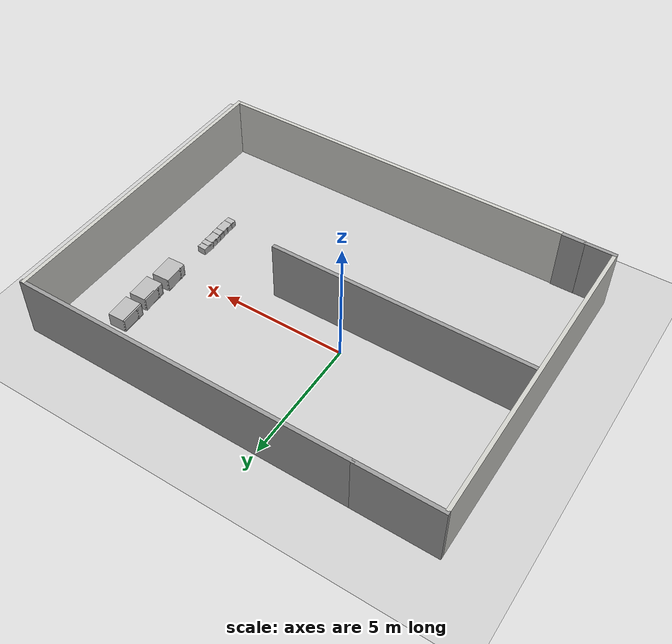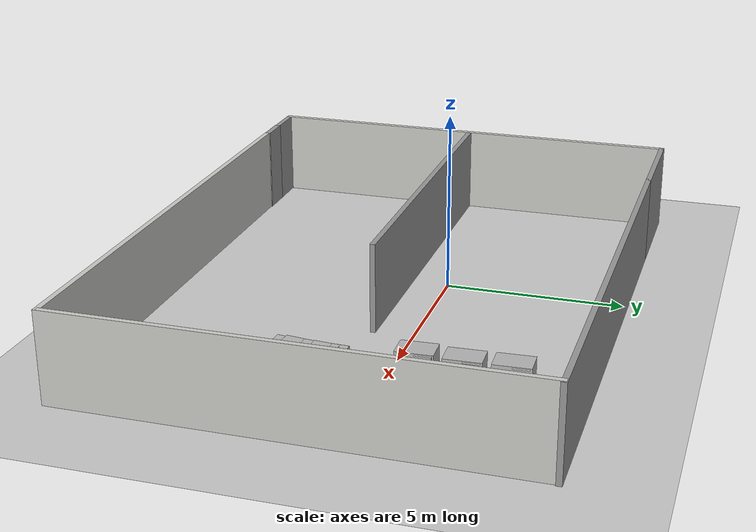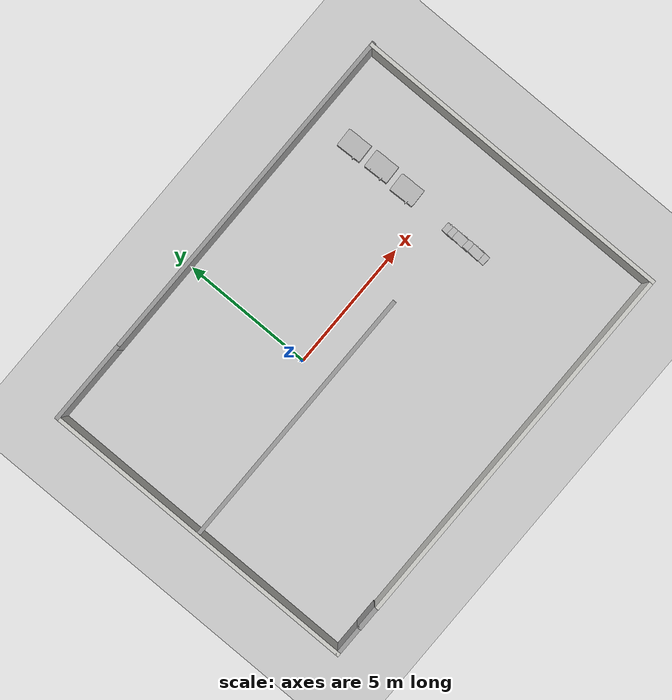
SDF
<sdf version="1.7">
 <world name="default">
  <light name="sun" type="directional">
   <pose>0 0 10 0 -0 0</pose>
   <diffuse>0.8 0.8 0.8 1</diffuse>
   <specular>0.2 0.2 0.2 1</specular>
   <attenuation>
    <range>1000</range>
    <constant>0.9</constant>
    <linear>0.01</linear>
    <quadratic>0.001</quadratic>
   </attenuation>
   <direction>-0.5 0.1 -0.9</direction>
   <spot><inner_angle>0</inner_angle><outer_angle>0</outer_angle><falloff>0</falloff></spot>
  </light>
  <model name="ground_plane">
   <static>1</static>
   <link name="link">
    <collision name="collision">
     <geometry><plane><normal>0 0 1</normal><size>100 100</size></plane></geometry>
     <surface><friction><ode><mu>100</mu><mu2>50</mu2></ode></friction></surface>
    </collision>
    <visual name="visual">
     <cast_shadows>0</cast_shadows>
     <geometry><plane><normal>0 0 1</normal><size>100 100</size></plane></geometry>
     <material>
      <script><uri>file://media/materials/scripts/gazebo.material</uri><name>Gazebo/Grey</name></script>
     </material>
    </visual>
   </link>
  </model>
  <gravity>0 0 -9.8</gravity>
  <magnetic_field>6e-06 2.3e-05 -4.2e-05</magnetic_field>
  <atmosphere type="adiabatic"/>
  <physics type="ode">
   <max_step_size>0.001</max_step_size>
   <real_time_factor>1</real_time_factor>
   <real_time_update_rate>1000</real_time_update_rate>
  </physics>
  <scene><ambient>0.4 0.4 0.4 1</ambient><background>0.7 0.7 0.7 1</background><shadows>1</shadows></scene>
  <audio><device>default</device></audio>
  <spherical_coordinates>
   <surface_model>EARTH_WGS84</surface_model>
   <latitude_deg>0</latitude_deg>
   <longitude_deg>0</longitude_deg>
   <elevation>0</elevation>
   <heading_deg>0</heading_deg>
  </spherical_coordinates>
  <model name="mobile_clone_0">
   <static>1</static>
   <pose>6.6805 -2.39981 0.906568 1.58267 0.03123 1.5096</pose>
   <link name="mobile_link">
    <visual name="visual">
     <geometry><mesh><uri>model://mobile/meshes/result.dae</uri><scale>1 1 1</scale></mesh></geometry>
    </visual>
    <collision name="collision">
     <geometry><mesh><uri>model://mobile/meshes/result.dae</uri><scale>1 1 1</scale></mesh></geometry>
    </collision>
   </link>
  </model>
  <model name="mobile_clone_1">
   <static>1</static>
   <pose>6.67653 -1.45206 0.884531 1.58266 0.019416 1.50946</pose>
   <link name="mobile_link">
    <visual name="visual">
     <geometry><mesh><uri>model://mobile/meshes/result.dae</uri><scale>1 1 1</scale></mesh></geometry>
    </visual>
    <collision name="collision">
     <geometry><mesh><uri>model://mobile/meshes/result.dae</uri><scale>1 1 1</scale></mesh></geometry>
    </collision>
   </link>
  </model>
  <model name="mobile_clone_2">
   <static>1</static>
   <pose>6.67913 -1.23706 0.874611 1.58266 0.00555 1.50929</pose>
   <link name="mobile_link">
    <visual name="visual">
     <geometry><mesh><uri>model://mobile/meshes/result.dae</uri><scale>1 1 1</scale></mesh></geometry>
    </visual>
    <collision name="collision">
     <geometry><mesh><uri>model://mobile/meshes/result.dae</uri><scale>1 1 1</scale></mesh></geometry>
    </collision>
   </link>
  </model>
  <model name="mobile_clone_3">
   <static>1</static>
   <pose>6.67076 -1.00467 0.865162 1.58266 -0.008198 1.50913</pose>
   <link name="mobile_link">
    <visual name="visual">
     <geometry><mesh><uri>model://mobile/meshes/result.dae</uri><scale>1 1 1</scale></mesh></geometry>
    </visual>
    <collision name="collision">
     <geometry><mesh><uri>model://mobile/meshes/result.dae</uri><scale>1 1 1</scale></mesh></geometry>
    </collision>
   </link>
  </model>
  <model name="mobile_clone_4">
   <static>1</static>
   <pose>6.67814 -1.68213 0.884897 1.58266 0.019411 1.50946</pose>
   <link name="mobile_link">
    <visual name="visual">
     <geometry><mesh><uri>model://mobile/meshes/result.dae</uri><scale>1 1 1</scale></mesh></geometry>
    </visual>
    <collision name="collision">
     <geometry><mesh><uri>model://mobile/meshes/result.dae</uri><scale>1 1 1</scale></mesh></geometry>
    </collision>
   </link>
  </model>
  <model name="mobile_clone_5">
   <static>1</static>
   <pose>6.68047 -1.91984 0.90199 1.58267 0.035282 1.50964</pose>
   <link name="mobile_link">
    <visual name="visual">
     <geometry><mesh><uri>model://mobile/meshes/result.dae</uri><scale>1 1 1</scale></mesh></geometry>
    </visual>
    <collision name="collision">
     <geometry><mesh><uri>model://mobile/meshes/result.dae</uri><scale>1 1 1</scale></mesh></geometry>
    </collision>
   </link>
  </model>
  <model name="mobile_clone_6">
   <static>1</static>
   <pose>6.67664 -2.16687 0.91787 1.58267 0.043655 1.50974</pose>
   <link name="mobile_link">
    <visual name="visual">
     <geometry><mesh><uri>model://mobile/meshes/result.dae</uri><scale>1 1 1</scale></mesh></geometry>
    </visual>
    <collision name="collision">
     <geometry><mesh><uri>model://mobile/meshes/result.dae</uri><scale>1 1 1</scale></mesh></geometry>
    </collision>
   </link>
  </model>
  <model name="microwave">
   <static>1</static>
   <link name="microwave_link">
    <visual name="visual">
     <geometry>
      <mesh><uri>model://microwave/meshes/result.dae</uri><scale>2 2 2</scale><pose>0 0 0.2 0 0 0</pose></mesh>
     </geometry>
    </visual>
   </link>
   <pose>6.75936 1.01509 1.05629 1.57517 -0 -1.53258</pose>
  </model>
  <model name="microwave_clone">
   <static>1</static>
   <link name="microwave_link">
    <visual name="visual">
     <geometry>
      <mesh><uri>model://microwave/meshes/result.dae</uri><scale>2 2 2</scale><pose>0 0 0.2 0 0 0</pose></mesh>
     </geometry>
    </visual>
   </link>
   <pose>6.81109 2.2015 1.05683 1.57517 -0 -1.53258</pose>
  </model>
  <model name="microwave_clone_0">
   <static>1</static>
   <link name="microwave_link">
    <visual name="visual">
     <geometry>
      <mesh><uri>model://microwave/meshes/result.dae</uri><scale>2 2 2</scale><pose>0 0 0.2 0 0 0</pose></mesh>
     </geometry>
    </visual>
   </link>
   <pose>6.76618 3.37661 1.0567 1.57517 -0 -1.53258</pose>
  </model>
  <light name="user_directional_light_1" type="directional">
   <pose>0.119262 -0.018654 1 0 -0 0</pose>
   <diffuse>0.5 0.5 0.5 1</diffuse>
   <specular>0.1 0.1 0.1 1</specular>
   <direction>0.1 0.1 -0.9</direction>
   <attenuation>
    <range>20</range>
    <constant>0.5</constant>
    <linear>0.01</linear>
    <quadratic>0.001</quadratic>
   </attenuation>
   <spot><inner_angle>0</inner_angle><outer_angle>0</outer_angle><falloff>0</falloff></spot>
  </light>
  <light name="user_directional_light_2" type="directional">
   <pose>4.36307 4.17756 1 0 -0 0</pose>
   <diffuse>0.5 0.5 0.5 1</diffuse>
   <specular>0.1 0.1 0.1 1</specular>
   <direction>0.1 0.1 -0.9</direction>
   <attenuation>
    <range>20</range>
    <constant>0.5</constant>
    <linear>0.01</linear>
    <quadratic>0.001</quadratic>
   </attenuation>
   <spot><inner_angle>0</inner_angle><outer_angle>0</outer_angle><falloff>0</falloff></spot>
  </light>
  <light name="user_directional_light_3" type="directional">
   <pose>4.38227 -3.82129 1 0 -0 0</pose>
   <diffuse>0.5 0.5 0.5 1</diffuse>
   <specular>0.1 0.1 0.1 1</specular>
   <direction>0.1 0.1 -0.9</direction>
   <attenuation>
    <range>20</range>
    <constant>0.5</constant>
    <linear>0.01</linear>
    <quadratic>0.001</quadratic>
   </attenuation>
   <spot><inner_angle>0</inner_angle><outer_angle>0</outer_angle><falloff>0</falloff></spot>
  </light>
  <light name="user_directional_light_0" type="directional">
   <pose>-3.48101 0.502079 1 0 -0 0</pose>
   <diffuse>0.5 0.5 0.5 1</diffuse>
   <specular>0.1 0.1 0.1 1</specular>
   <direction>0.1 0.1 -0.9</direction>
   <attenuation>
    <range>20</range>
    <constant>0.5</constant>
    <linear>0.01</linear>
    <quadratic>0.001</quadratic>
   </attenuation>
   <spot><inner_angle>0</inner_angle><outer_angle>0</outer_angle><falloff>0</falloff></spot>
  </light>
  <light name="user_point_light_1" type="point">
   <pose>5.14321 -0.089968 1 0 -0 0</pose>
   <diffuse>0.5 0.5 0.5 1</diffuse>
   <specular>0.1 0.1 0.1 1</specular>
   <attenuation>
    <range>20</range>
    <constant>0.5</constant>
    <linear>0.01</linear>
    <quadratic>0.001</quadratic>
   </attenuation>
   <cast_shadows>0</cast_shadows>
   <direction>0 0 -1</direction>
   <spot><inner_angle>0</inner_angle><outer_angle>0</outer_angle><falloff>0</falloff></spot>
  </light>
  <model name="showroom">
   <pose>1.45869 -1.13408 0 0 -0 0</pose>
   <link name="Door_0">
    <collision name="Door_0_Collision">
     <geometry><box><size>0.9 0.17 2.5</size></box></geometry>
     <pose>0 0 1.25 0 -0 0</pose>
    </collision>
    <visual name="Door_0_Visual">
     <pose>0 0 1.25 0 -0 0</pose>
     <geometry><box><size>0.9 0.17 2.5</size></box></geometry>
     <material>
      <script><uri>file://media/materials/scripts/gazebo.material</uri><name>Gazebo/Grey</name></script>
     </material>
    </visual>
    <pose>-6.6566 -6.16616 0 0 -0 0</pose>
   </link>
   <link name="Wall_10">
    <collision name="Wall_10_Collision">
     <geometry><box><size>12.5 0.15 2.5</size></box></geometry>
     <pose>0 0 1.25 0 -0 0</pose>
    </collision>
    <visual name="Wall_10_Visual">
     <pose>0 0 1.25 0 -0 0</pose>
     <geometry><box><size>12.5 0.15 2.5</size></box></geometry>
     <material>
      <script><uri>file://media/materials/scripts/gazebo.material</uri><name>Gazebo/CeilingTiled</name></script>
      <ambient>1 1 1 1</ambient>
     </material>
     <meta><layer>0</layer></meta>
    </visual>
    <pose>8.21691 -0.011927 0 0 -0 1.5708</pose>
   </link>
   <link name="Wall_25">
    <collision name="Wall_25_Collision">
     <geometry><box><size>3.25 0.15 2.5</size></box></geometry>
     <pose>0 0 1.25 0 -0 0</pose>
    </collision>
    <visual name="Wall_25_Visual">
     <pose>0 0 1.25 0 -0 0</pose>
     <geometry><box><size>3.25 0.15 2.5</size></box></geometry>
     <material>
      <script><uri>file://media/materials/scripts/gazebo.material</uri><name>Gazebo/Grey</name></script>
      <ambient>1 1 1 1</ambient>
     </material>
     <meta><layer>0</layer></meta>
    </visual>
    <pose>-6.66691 6.18693 0 0 -0 0</pose>
   </link>
   <link name="Wall_30">
    <collision name="Wall_30_Collision">
     <geometry><box><size>12.5 0.15 2.5</size></box></geometry>
     <pose>0 0 1.25 0 -0 0</pose>
    </collision>
    <visual name="Wall_30_Visual">
     <pose>0 0 1.25 0 -0 0</pose>
     <geometry><box><size>12.5 0.15 2.5</size></box></geometry>
     <material>
      <script><uri>file://media/materials/scripts/gazebo.material</uri><name>Gazebo/CeilingTiled</name></script>
      <ambient>1 1 1 1</ambient>
     </material>
     <meta><layer>0</layer></meta>
    </visual>
    <pose>-8.21691 0.011927 0 0 -0 -1.5708</pose>
   </link>
   <link name="Wall_32">
    <collision name="Wall_32_Collision">
     <geometry><box><size>1.25 0.15 2.5</size></box></geometry>
     <pose>0 0 1.25 0 -0 0</pose>
    </collision>
    <visual name="Wall_32_Visual">
     <pose>0 0 1.25 0 -0 0</pose>
     <geometry><box><size>1.25 0.15 2.5</size></box></geometry>
     <material>
      <script><uri>file://media/materials/scripts/gazebo.material</uri><name>Gazebo/Grey</name></script>
      <ambient>1 1 1 1</ambient>
     </material>
     <meta><layer>0</layer></meta>
    </visual>
    <pose>-7.66691 -6.16307 0 0 -0 0</pose>
   </link>
   <link name="Wall_4">
    <collision name="Wall_4_Collision">
     <geometry><box><size>14.5 0.15 2.5</size></box></geometry>
     <pose>0 0 1.25 0 -0 0</pose>
    </collision>
    <visual name="Wall_4_Visual">
     <pose>0 0 1.25 0 -0 0</pose>
     <geometry><box><size>14.5 0.15 2.5</size></box></geometry>
     <material>
      <script><uri>file://media/materials/scripts/gazebo.material</uri><name>Gazebo/CeilingTiled</name></script>
      <ambient>1 1 1 1</ambient>
     </material>
     <meta><layer>0</layer></meta>
    </visual>
    <pose>1.04191 -6.18693 0 0 -0 0</pose>
   </link>
   <static>1</static>
  </model>
  <model name="beech">
   <pose>1.55642 1.97325 0 0 -0 0</pose>
   <link name="Wall_0">
    <collision name="Wall_0_Collision">
     <geometry><box><size>10.25 0.15 2.5</size></box></geometry>
     <pose>0 0 1.25 0 -0 0</pose>
    </collision>
    <visual name="Wall_0_Visual">
     <pose>0 0 1.25 0 -0 0</pose>
     <geometry><box><size>10.25 0.15 2.5</size></box></geometry>
     <material>
      <script><uri>file://media/materials/scripts/gazebo.material</uri><name>Gazebo/Grey</name></script>
      <ambient>1 1 1 1</ambient>
     </material>
     <meta><layer>0</layer></meta>
    </visual>
    <pose>-3.11029 -3.0784 0 0 -0 0</pose>
   </link>
   <link name="Wall_2">
    <collision name="Wall_2_Collision">
     <geometry><box><size>13.5 0.15 2.5</size></box></geometry>
     <pose>0 0 1.25 0 -0 0</pose>
    </collision>
    <visual name="Wall_2_Visual">
     <pose>0 0 1.25 0 -0 0</pose>
     <geometry><box><size>13.5 0.15 2.5</size></box></geometry>
     <material>
      <script><uri>file://media/materials/scripts/gazebo.material</uri><name>Gazebo/Grey</name></script>
      <ambient>1 1 1 1</ambient>
     </material>
     <meta><layer>0</layer></meta>
    </visual>
    <pose>1.4853 3.0784 0 0 -0 0</pose>
   </link>
   <static>1</static>
  </model>
  <light name="user_point_light_2" type="point">
   <pose>5.43569 -3.04142 1 0 -0 0</pose>
   <diffuse>0.5 0.5 0.5 1</diffuse>
   <specular>0.1 0.1 0.1 1</specular>
   <attenuation>
    <range>20</range>
    <constant>0.5</constant>
    <linear>0.01</linear>
    <quadratic>0.001</quadratic>
   </attenuation>
   <cast_shadows>0</cast_shadows>
   <direction>0 0 -1</direction>
  </light>
 </world>
</sdf>
